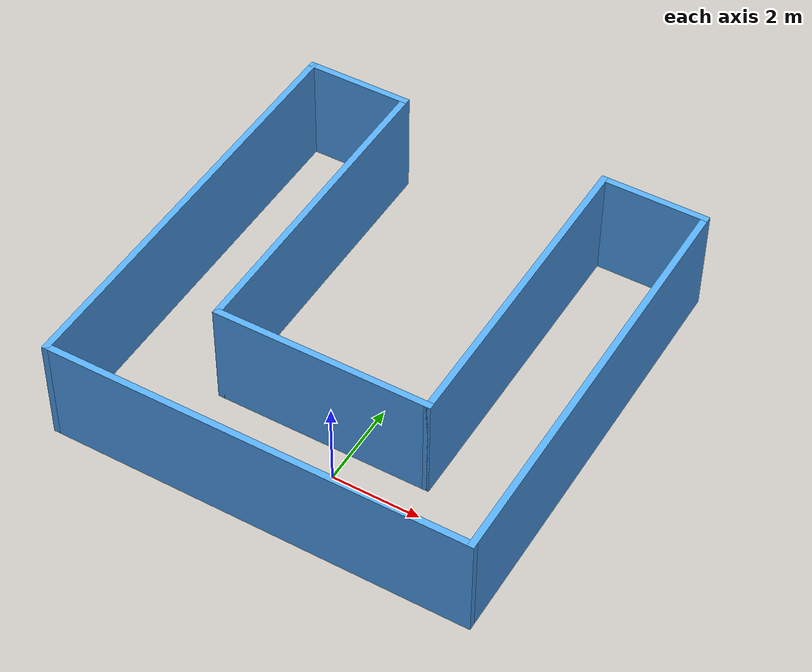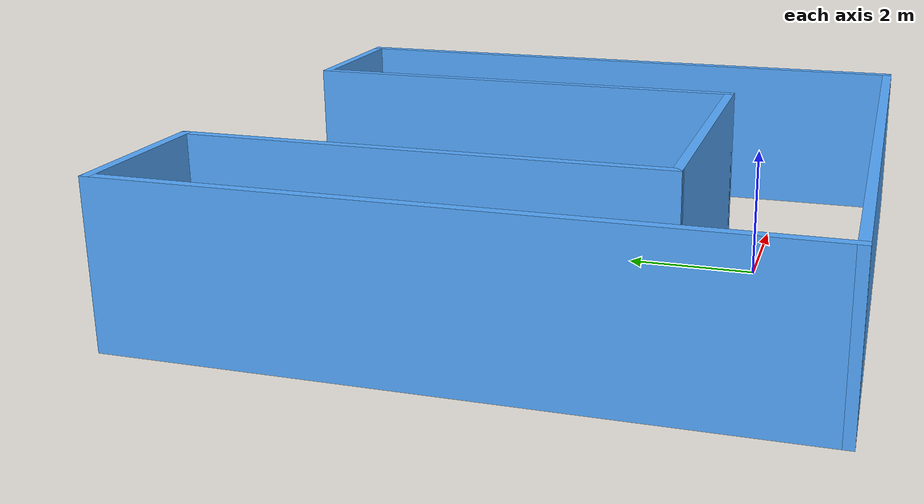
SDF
<?xml version='1.0'?>
<sdf version='1.6'>
  <model name='u-building'>
    <pose frame=''>-0.665 3.155 0 0 -0 0</pose>
    <link name='Wall_0'>
      <collision name='Wall_0_Collision'>
        <geometry>
          <box>
            <size>10 0.15 2.5</size>
          </box>
        </geometry>
        <pose frame=''>0 0 1.25 0 -0 0</pose>
      </collision>
      <visual name='Wall_0_Visual'>
        <pose frame=''>0 0 1.25 0 -0 0</pose>
        <geometry>
          <box>
            <size>10 0.15 2.5</size>
          </box>
        </geometry>
        <material>
          <script>
            <uri>file://media/materials/scripts/gazebo.material</uri>
            <name>Gazebo/Grey</name>
          </script>
          <ambient>0.333333 0.666667 1 1</ambient>
        </material>
        <meta>
          <layer>0</layer>
        </meta>
      </visual>
      <pose frame=''>-4.775 0 0 0 -0 1.5708</pose>
    </link>
    <link name='Wall_1'>
      <collision name='Wall_1_Collision'>
        <geometry>
          <box>
            <size>2.5 0.15 2.5</size>
          </box>
        </geometry>
        <pose frame=''>0 0 1.25 0 -0 0</pose>
      </collision>
      <visual name='Wall_1_Visual'>
        <pose frame=''>0 0 1.25 0 -0 0</pose>
        <geometry>
          <box>
            <size>2.5 0.15 2.5</size>
          </box>
        </geometry>
        <material>
          <script>
            <uri>file://media/materials/scripts/gazebo.material</uri>
            <name>Gazebo/Grey</name>
          </script>
          <ambient>0.333333 0.666667 1 1</ambient>
        </material>
        <meta>
          <layer>0</layer>
        </meta>
      </visual>
      <pose frame=''>-3.6 4.925 0 0 -0 0</pose>
    </link>
    <link name='Wall_2'>
      <collision name='Wall_2_Collision'>
        <geometry>
          <box>
            <size>7.5 0.15 2.5</size>
          </box>
        </geometry>
        <pose frame=''>0 0 1.25 0 -0 0</pose>
      </collision>
      <visual name='Wall_2_Visual'>
        <pose frame=''>0 0 1.25 0 -0 0</pose>
        <geometry>
          <box>
            <size>7.5 0.15 2.5</size>
          </box>
        </geometry>
        <material>
          <script>
            <uri>file://media/materials/scripts/gazebo.material</uri>
            <name>Gazebo/Grey</name>
          </script>
          <ambient>0.333333 0.666667 1 1</ambient>
        </material>
        <meta>
          <layer>0</layer>
        </meta>
      </visual>
      <pose frame=''>-2.425 1.25 0 0 0 -1.5708</pose>
    </link>
    <link name='Wall_3'>
      <collision name='Wall_3_Collision'>
        <geometry>
          <box>
            <size>5 0.15 2.5</size>
          </box>
        </geometry>
        <pose frame=''>0 0 1.25 0 -0 0</pose>
      </collision>
      <visual name='Wall_3_Visual'>
        <pose frame=''>0 0 1.25 0 -0 0</pose>
        <geometry>
          <box>
            <size>5 0.15 2.5</size>
          </box>
        </geometry>
        <material>
          <script>
            <uri>file://media/materials/scripts/gazebo.material</uri>
            <name>Gazebo/Grey</name>
          </script>
          <ambient>0.333333 0.666667 1 1</ambient>
        </material>
        <meta>
          <layer>0</layer>
        </meta>
      </visual>
      <pose frame=''>0 -2.425 0 0 -0 0</pose>
    </link>
    <link name='Wall_4'>
      <collision name='Wall_4_Collision'>
        <geometry>
          <box>
            <size>7.5 0.15 2.5</size>
          </box>
        </geometry>
        <pose frame=''>0 0 1.25 0 -0 0</pose>
      </collision>
      <visual name='Wall_4_Visual'>
        <pose frame=''>0 0 1.25 0 -0 0</pose>
        <geometry>
          <box>
            <size>7.5 0.15 2.5</size>
          </box>
        </geometry>
        <material>
          <script>
            <uri>file://media/materials/scripts/gazebo.material</uri>
            <name>Gazebo/Grey</name>
          </script>
          <ambient>0.333333 0.666667 1 1</ambient>
        </material>
        <meta>
          <layer>0</layer>
        </meta>
      </visual>
      <pose frame=''>2.425 1.25 0 0 -0 1.5708</pose>
    </link>
    <link name='Wall_5'>
      <collision name='Wall_5_Collision'>
        <geometry>
          <box>
            <size>2.5 0.15 2.5</size>
          </box>
        </geometry>
        <pose frame=''>0 0 1.25 0 -0 0</pose>
      </collision>
      <visual name='Wall_5_Visual'>
        <pose frame=''>0 0 1.25 0 -0 0</pose>
        <geometry>
          <box>
            <size>2.5 0.15 2.5</size>
          </box>
        </geometry>
        <material>
          <script>
            <uri>file://media/materials/scripts/gazebo.material</uri>
            <name>Gazebo/Grey</name>
          </script>
          <ambient>0.333333 0.666667 1 1</ambient>
        </material>
        <meta>
          <layer>0</layer>
        </meta>
      </visual>
      <pose frame=''>3.6 4.925 0 0 -0 0</pose>
    </link>
    <link name='Wall_6'>
      <collision name='Wall_6_Collision'>
        <geometry>
          <box>
            <size>10 0.15 2.5</size>
          </box>
        </geometry>
        <pose frame=''>0 0 1.25 0 -0 0</pose>
      </collision>
      <visual name='Wall_6_Visual'>
        <pose frame=''>0 0 1.25 0 -0 0</pose>
        <geometry>
          <box>
            <size>10 0.15 2.5</size>
          </box>
        </geometry>
        <material>
          <script>
            <uri>file://media/materials/scripts/gazebo.material</uri>
            <name>Gazebo/Grey</name>
          </script>
          <ambient>0.333333 0.666667 1 1</ambient>
        </material>
        <meta>
          <layer>0</layer>
        </meta>
      </visual>
      <pose frame=''>4.775 0 0 0 0 -1.5708</pose>
    </link>
    <link name='Wall_7'>
      <collision name='Wall_7_Collision'>
        <geometry>
          <box>
            <size>9.7 0.15 2.5</size>
          </box>
        </geometry>
        <pose frame=''>0 0 1.25 0 -0 0</pose>
      </collision>
      <visual name='Wall_7_Visual'>
        <pose frame=''>0 0 1.25 0 -0 0</pose>
        <geometry>
          <box>
            <size>9.7 0.15 2.5</size>
          </box>
        </geometry>
        <material>
          <script>
            <uri>file://media/materials/scripts/gazebo.material</uri>
            <name>Gazebo/Grey</name>
          </script>
          <ambient>0.333333 0.666667 1 1</ambient>
        </material>
        <meta>
          <layer>0</layer>
        </meta>
      </visual>
      <pose frame=''>0 -4.925 0 0 -0 3.14159</pose>
    </link>
    <static>1</static>
  </model>
</sdf>
